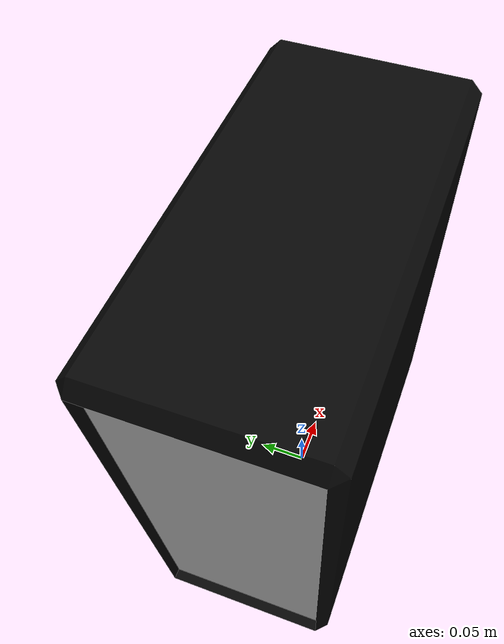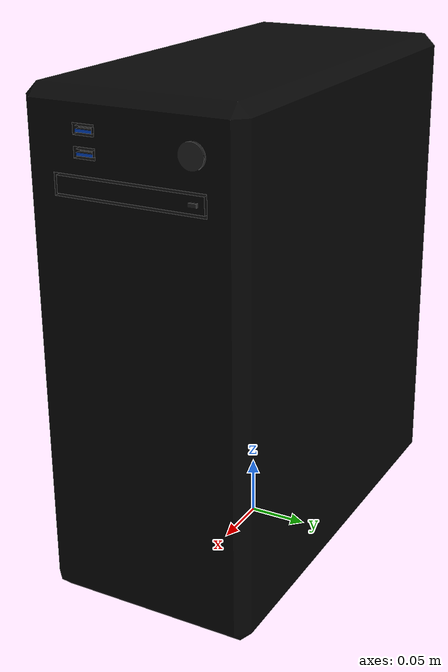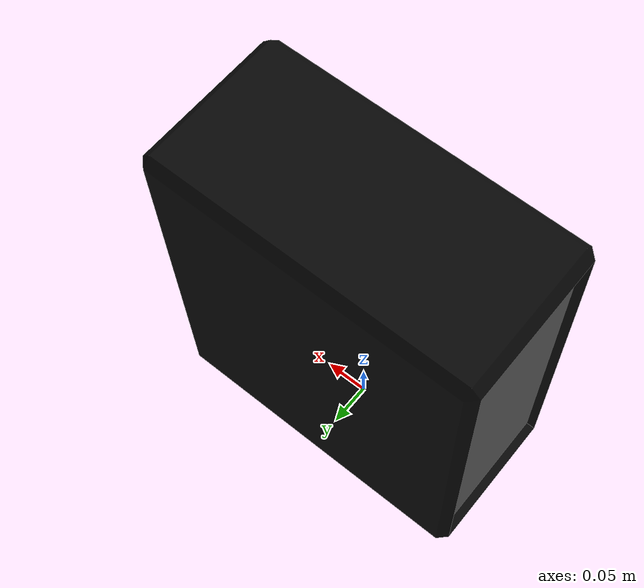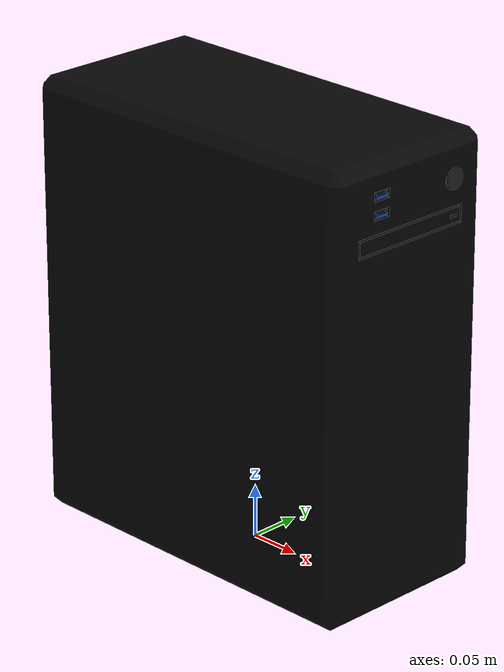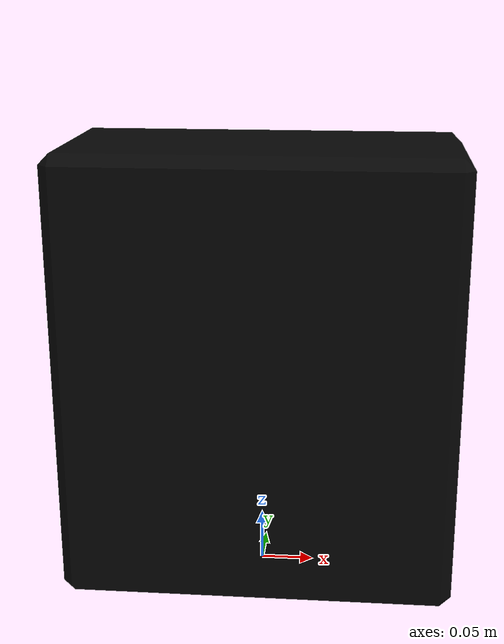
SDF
<?xml version="1.0" ?>
<sdf version="1.5">
  <model name="pc_station">
    <static>true</static>
    <link name="pc_station">
      <collision name="pc_station">
        <pose>0 0 0 0 0 0</pose>
        <geometry>
          <mesh>
            <uri>model://pc_station/meshes/model.dae</uri>
          </mesh>
        </geometry>
      </collision>

      <visual name="pc_station">
      <cast_shadows>true</cast_shadows>
        <geometry>
          <mesh>
          <uri>model://pc_station/meshes/model.dae</uri>
        </mesh>
        </geometry>
      </visual>
    </link>
  </model>
</sdf>
